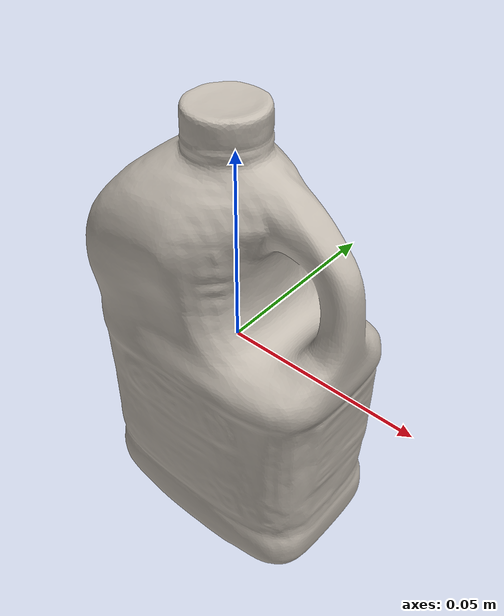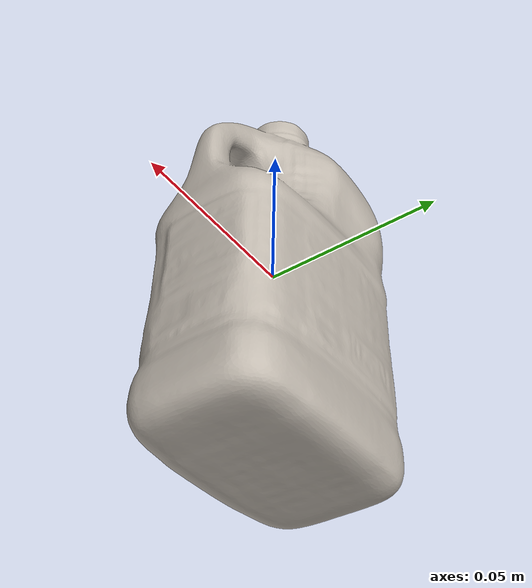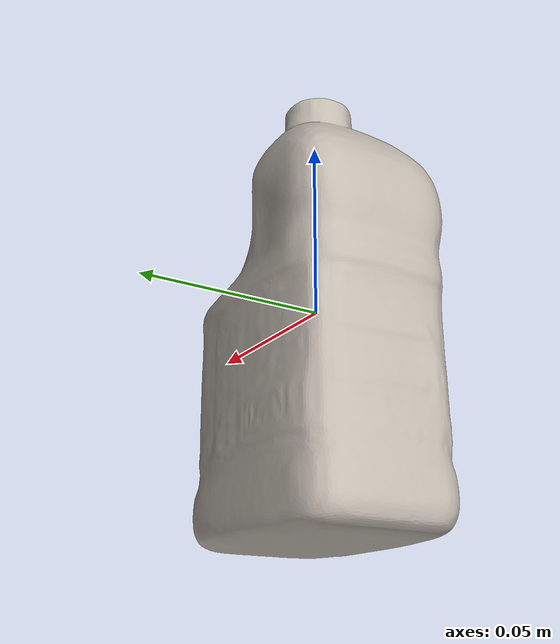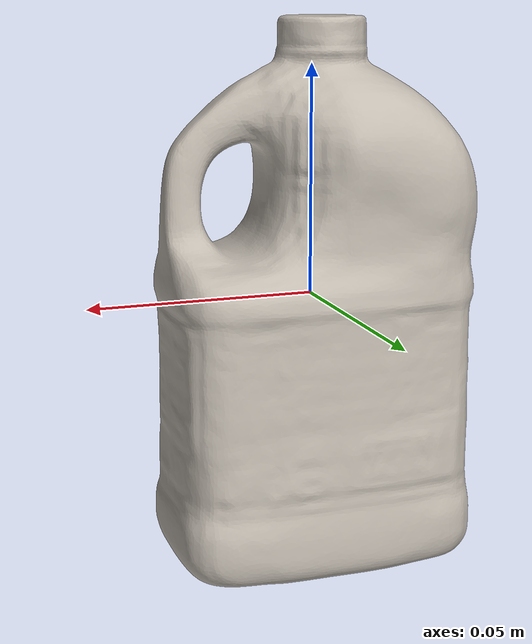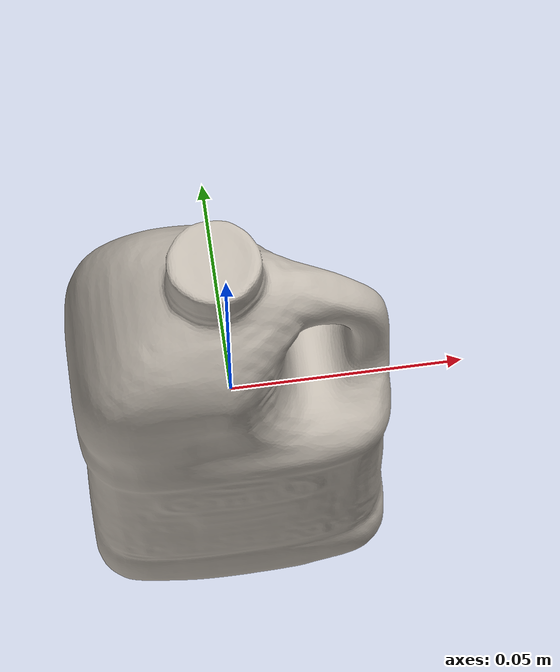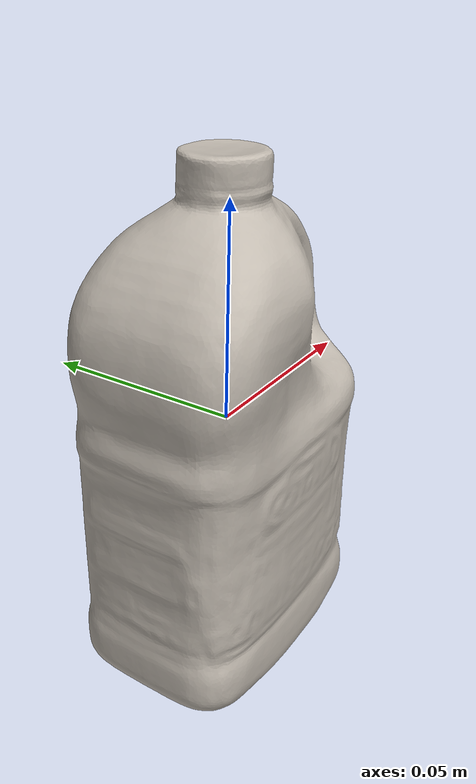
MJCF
<?xml version='1.0' encoding='utf-8'?>
<mujoco model="canola_oil_2">
  <asset>
    <texture file="ceramic.png" name="tex-canola_oil_2" type="2d" />
    <material name="canola_oil_2" reflectance="0.5" texrepeat="1 1" texture="tex-canola_oil_2" texuniform="false" />
    <mesh file="visual/model_normalized_0.obj" name="model_normalized_0_vis" scale="0.12000000000000002 0.12000000000000002 0.12000000000000002" refquat="0.7071067811865475 0.0 0.0 0.7071067811865475" />
    <mesh file="collision/model_normalized_collision_13.obj" name="model_normalized_collision_13._coll" scale="0.12000000000000002 0.12000000000000002 0.12000000000000002" refquat="0.7071067811865475 0.0 0.0 0.7071067811865475" />
    <mesh file="collision/model_normalized_collision_15.obj" name="model_normalized_collision_15._coll" scale="0.12000000000000002 0.12000000000000002 0.12000000000000002" refquat="0.7071067811865475 0.0 0.0 0.7071067811865475" />
    <mesh file="collision/model_normalized_collision_10.obj" name="model_normalized_collision_10._coll" scale="0.12000000000000002 0.12000000000000002 0.12000000000000002" refquat="0.7071067811865475 0.0 0.0 0.7071067811865475" />
    <mesh file="collision/model_normalized_collision_26.obj" name="model_normalized_collision_26._coll" scale="0.12000000000000002 0.12000000000000002 0.12000000000000002" refquat="0.7071067811865475 0.0 0.0 0.7071067811865475" />
    <mesh file="collision/model_normalized_collision_25.obj" name="model_normalized_collision_25._coll" scale="0.12000000000000002 0.12000000000000002 0.12000000000000002" refquat="0.7071067811865475 0.0 0.0 0.7071067811865475" />
    <mesh file="collision/model_normalized_collision_5.obj" name="model_normalized_collision_5._coll" scale="0.12000000000000002 0.12000000000000002 0.12000000000000002" refquat="0.7071067811865475 0.0 0.0 0.7071067811865475" />
    <mesh file="collision/model_normalized_collision_31.obj" name="model_normalized_collision_31._coll" scale="0.12000000000000002 0.12000000000000002 0.12000000000000002" refquat="0.7071067811865475 0.0 0.0 0.7071067811865475" />
    <mesh file="collision/model_normalized_collision_3.obj" name="model_normalized_collision_3._coll" scale="0.12000000000000002 0.12000000000000002 0.12000000000000002" refquat="0.7071067811865475 0.0 0.0 0.7071067811865475" />
    <mesh file="collision/model_normalized_collision_14.obj" name="model_normalized_collision_14._coll" scale="0.12000000000000002 0.12000000000000002 0.12000000000000002" refquat="0.7071067811865475 0.0 0.0 0.7071067811865475" />
    <mesh file="collision/model_normalized_collision_28.obj" name="model_normalized_collision_28._coll" scale="0.12000000000000002 0.12000000000000002 0.12000000000000002" refquat="0.7071067811865475 0.0 0.0 0.7071067811865475" />
    <mesh file="collision/model_normalized_collision_11.obj" name="model_normalized_collision_11._coll" scale="0.12000000000000002 0.12000000000000002 0.12000000000000002" refquat="0.7071067811865475 0.0 0.0 0.7071067811865475" />
    <mesh file="collision/model_normalized_collision_29.obj" name="model_normalized_collision_29._coll" scale="0.12000000000000002 0.12000000000000002 0.12000000000000002" refquat="0.7071067811865475 0.0 0.0 0.7071067811865475" />
    <mesh file="collision/model_normalized_collision_24.obj" name="model_normalized_collision_24._coll" scale="0.12000000000000002 0.12000000000000002 0.12000000000000002" refquat="0.7071067811865475 0.0 0.0 0.7071067811865475" />
    <mesh file="collision/model_normalized_collision_1.obj" name="model_normalized_collision_1._coll" scale="0.12000000000000002 0.12000000000000002 0.12000000000000002" refquat="0.7071067811865475 0.0 0.0 0.7071067811865475" />
    <mesh file="collision/model_normalized_collision_0.obj" name="model_normalized_collision_0._coll" scale="0.12000000000000002 0.12000000000000002 0.12000000000000002" refquat="0.7071067811865475 0.0 0.0 0.7071067811865475" />
    <mesh file="collision/model_normalized_collision_27.obj" name="model_normalized_collision_27._coll" scale="0.12000000000000002 0.12000000000000002 0.12000000000000002" refquat="0.7071067811865475 0.0 0.0 0.7071067811865475" />
    <mesh file="collision/model_normalized_collision_9.obj" name="model_normalized_collision_9._coll" scale="0.12000000000000002 0.12000000000000002 0.12000000000000002" refquat="0.7071067811865475 0.0 0.0 0.7071067811865475" />
    <mesh file="collision/model_normalized_collision_19.obj" name="model_normalized_collision_19._coll" scale="0.12000000000000002 0.12000000000000002 0.12000000000000002" refquat="0.7071067811865475 0.0 0.0 0.7071067811865475" />
    <mesh file="collision/model_normalized_collision_21.obj" name="model_normalized_collision_21._coll" scale="0.12000000000000002 0.12000000000000002 0.12000000000000002" refquat="0.7071067811865475 0.0 0.0 0.7071067811865475" />
    <mesh file="collision/model_normalized_collision_30.obj" name="model_normalized_collision_30._coll" scale="0.12000000000000002 0.12000000000000002 0.12000000000000002" refquat="0.7071067811865475 0.0 0.0 0.7071067811865475" />
    <mesh file="collision/model_normalized_collision_20.obj" name="model_normalized_collision_20._coll" scale="0.12000000000000002 0.12000000000000002 0.12000000000000002" refquat="0.7071067811865475 0.0 0.0 0.7071067811865475" />
    <mesh file="collision/model_normalized_collision_2.obj" name="model_normalized_collision_2._coll" scale="0.12000000000000002 0.12000000000000002 0.12000000000000002" refquat="0.7071067811865475 0.0 0.0 0.7071067811865475" />
    <mesh file="collision/model_normalized_collision_7.obj" name="model_normalized_collision_7._coll" scale="0.12000000000000002 0.12000000000000002 0.12000000000000002" refquat="0.7071067811865475 0.0 0.0 0.7071067811865475" />
    <mesh file="collision/model_normalized_collision_22.obj" name="model_normalized_collision_22._coll" scale="0.12000000000000002 0.12000000000000002 0.12000000000000002" refquat="0.7071067811865475 0.0 0.0 0.7071067811865475" />
    <mesh file="collision/model_normalized_collision_16.obj" name="model_normalized_collision_16._coll" scale="0.12000000000000002 0.12000000000000002 0.12000000000000002" refquat="0.7071067811865475 0.0 0.0 0.7071067811865475" />
    <mesh file="collision/model_normalized_collision_8.obj" name="model_normalized_collision_8._coll" scale="0.12000000000000002 0.12000000000000002 0.12000000000000002" refquat="0.7071067811865475 0.0 0.0 0.7071067811865475" />
    <mesh file="collision/model_normalized_collision_6.obj" name="model_normalized_collision_6._coll" scale="0.12000000000000002 0.12000000000000002 0.12000000000000002" refquat="0.7071067811865475 0.0 0.0 0.7071067811865475" />
    <mesh file="collision/model_normalized_collision_18.obj" name="model_normalized_collision_18._coll" scale="0.12000000000000002 0.12000000000000002 0.12000000000000002" refquat="0.7071067811865475 0.0 0.0 0.7071067811865475" />
    <mesh file="collision/model_normalized_collision_17.obj" name="model_normalized_collision_17._coll" scale="0.12000000000000002 0.12000000000000002 0.12000000000000002" refquat="0.7071067811865475 0.0 0.0 0.7071067811865475" />
    <mesh file="collision/model_normalized_collision_12.obj" name="model_normalized_collision_12._coll" scale="0.12000000000000002 0.12000000000000002 0.12000000000000002" refquat="0.7071067811865475 0.0 0.0 0.7071067811865475" />
    <mesh file="collision/model_normalized_collision_4.obj" name="model_normalized_collision_4._coll" scale="0.12000000000000002 0.12000000000000002 0.12000000000000002" refquat="0.7071067811865475 0.0 0.0 0.7071067811865475" />
    <mesh file="collision/model_normalized_collision_23.obj" name="model_normalized_collision_23._coll" scale="0.12000000000000002 0.12000000000000002 0.12000000000000002" refquat="0.7071067811865475 0.0 0.0 0.7071067811865475" />
    <texture type="2d" name="c3245da3f00d_Canola_oil__3d_asse_texture_kd" file="visual/c3245da3f00d_Canola_oil__3d_asse_texture_kd.png" />
    <material name="Material_0" texture="c3245da3f00d_Canola_oil__3d_asse_texture_kd" specular="0.5" shininess="0.5" />
  </asset>
  <default>
    <default class="region">
      <geom group="1" conaffinity="0" contype="0" rgba="0 1 0 0" />
    </default>
  </default>
  <worldbody>
    <body>
      <body name="object">
        <geom solimp="0.998 0.998 0.001" solref="0.001 1" density="100" friction="0.95 0.3 0.1" type="mesh" mesh="model_normalized_0_vis" conaffinity="0" contype="0" group="1" material="Material_0" />
        <geom solimp="0.998 0.998 0.001" solref="0.001 1" density="100" friction="0.95 0.3 0.1" type="mesh" mesh="model_normalized_collision_13._coll" group="0" rgba="0.8 0.8 0.8 0.0" />
        <geom solimp="0.998 0.998 0.001" solref="0.001 1" density="100" friction="0.95 0.3 0.1" type="mesh" mesh="model_normalized_collision_15._coll" group="0" rgba="0.8 0.8 0.8 0.0" />
        <geom solimp="0.998 0.998 0.001" solref="0.001 1" density="100" friction="0.95 0.3 0.1" type="mesh" mesh="model_normalized_collision_10._coll" group="0" rgba="0.8 0.8 0.8 0.0" />
        <geom solimp="0.998 0.998 0.001" solref="0.001 1" density="100" friction="0.95 0.3 0.1" type="mesh" mesh="model_normalized_collision_26._coll" group="0" rgba="0.8 0.8 0.8 0.0" />
        <geom solimp="0.998 0.998 0.001" solref="0.001 1" density="100" friction="0.95 0.3 0.1" type="mesh" mesh="model_normalized_collision_25._coll" group="0" rgba="0.8 0.8 0.8 0.0" />
        <geom solimp="0.998 0.998 0.001" solref="0.001 1" density="100" friction="0.95 0.3 0.1" type="mesh" mesh="model_normalized_collision_5._coll" group="0" rgba="0.8 0.8 0.8 0.0" />
        <geom solimp="0.998 0.998 0.001" solref="0.001 1" density="100" friction="0.95 0.3 0.1" type="mesh" mesh="model_normalized_collision_31._coll" group="0" rgba="0.8 0.8 0.8 0.0" />
        <geom solimp="0.998 0.998 0.001" solref="0.001 1" density="100" friction="0.95 0.3 0.1" type="mesh" mesh="model_normalized_collision_3._coll" group="0" rgba="0.8 0.8 0.8 0.0" />
        <geom solimp="0.998 0.998 0.001" solref="0.001 1" density="100" friction="0.95 0.3 0.1" type="mesh" mesh="model_normalized_collision_14._coll" group="0" rgba="0.8 0.8 0.8 0.0" />
        <geom solimp="0.998 0.998 0.001" solref="0.001 1" density="100" friction="0.95 0.3 0.1" type="mesh" mesh="model_normalized_collision_28._coll" group="0" rgba="0.8 0.8 0.8 0.0" />
        <geom solimp="0.998 0.998 0.001" solref="0.001 1" density="100" friction="0.95 0.3 0.1" type="mesh" mesh="model_normalized_collision_11._coll" group="0" rgba="0.8 0.8 0.8 0.0" />
        <geom solimp="0.998 0.998 0.001" solref="0.001 1" density="100" friction="0.95 0.3 0.1" type="mesh" mesh="model_normalized_collision_29._coll" group="0" rgba="0.8 0.8 0.8 0.0" />
        <geom solimp="0.998 0.998 0.001" solref="0.001 1" density="100" friction="0.95 0.3 0.1" type="mesh" mesh="model_normalized_collision_24._coll" group="0" rgba="0.8 0.8 0.8 0.0" />
        <geom solimp="0.998 0.998 0.001" solref="0.001 1" density="100" friction="0.95 0.3 0.1" type="mesh" mesh="model_normalized_collision_1._coll" group="0" rgba="0.8 0.8 0.8 0.0" />
        <geom solimp="0.998 0.998 0.001" solref="0.001 1" density="100" friction="0.95 0.3 0.1" type="mesh" mesh="model_normalized_collision_0._coll" group="0" rgba="0.8 0.8 0.8 0.0" />
        <geom solimp="0.998 0.998 0.001" solref="0.001 1" density="100" friction="0.95 0.3 0.1" type="mesh" mesh="model_normalized_collision_27._coll" group="0" rgba="0.8 0.8 0.8 0.0" />
        <geom solimp="0.998 0.998 0.001" solref="0.001 1" density="100" friction="0.95 0.3 0.1" type="mesh" mesh="model_normalized_collision_9._coll" group="0" rgba="0.8 0.8 0.8 0.0" />
        <geom solimp="0.998 0.998 0.001" solref="0.001 1" density="100" friction="0.95 0.3 0.1" type="mesh" mesh="model_normalized_collision_19._coll" group="0" rgba="0.8 0.8 0.8 0.0" />
        <geom solimp="0.998 0.998 0.001" solref="0.001 1" density="100" friction="0.95 0.3 0.1" type="mesh" mesh="model_normalized_collision_21._coll" group="0" rgba="0.8 0.8 0.8 0.0" />
        <geom solimp="0.998 0.998 0.001" solref="0.001 1" density="100" friction="0.95 0.3 0.1" type="mesh" mesh="model_normalized_collision_30._coll" group="0" rgba="0.8 0.8 0.8 0.0" />
        <geom solimp="0.998 0.998 0.001" solref="0.001 1" density="100" friction="0.95 0.3 0.1" type="mesh" mesh="model_normalized_collision_20._coll" group="0" rgba="0.8 0.8 0.8 0.0" />
        <geom solimp="0.998 0.998 0.001" solref="0.001 1" density="100" friction="0.95 0.3 0.1" type="mesh" mesh="model_normalized_collision_2._coll" group="0" rgba="0.8 0.8 0.8 0.0" />
        <geom solimp="0.998 0.998 0.001" solref="0.001 1" density="100" friction="0.95 0.3 0.1" type="mesh" mesh="model_normalized_collision_7._coll" group="0" rgba="0.8 0.8 0.8 0.0" />
        <geom solimp="0.998 0.998 0.001" solref="0.001 1" density="100" friction="0.95 0.3 0.1" type="mesh" mesh="model_normalized_collision_22._coll" group="0" rgba="0.8 0.8 0.8 0.0" />
        <geom solimp="0.998 0.998 0.001" solref="0.001 1" density="100" friction="0.95 0.3 0.1" type="mesh" mesh="model_normalized_collision_16._coll" group="0" rgba="0.8 0.8 0.8 0.0" />
        <geom solimp="0.998 0.998 0.001" solref="0.001 1" density="100" friction="0.95 0.3 0.1" type="mesh" mesh="model_normalized_collision_8._coll" group="0" rgba="0.8 0.8 0.8 0.0" />
        <geom solimp="0.998 0.998 0.001" solref="0.001 1" density="100" friction="0.95 0.3 0.1" type="mesh" mesh="model_normalized_collision_6._coll" group="0" rgba="0.8 0.8 0.8 0.0" />
        <geom solimp="0.998 0.998 0.001" solref="0.001 1" density="100" friction="0.95 0.3 0.1" type="mesh" mesh="model_normalized_collision_18._coll" group="0" rgba="0.8 0.8 0.8 0.0" />
        <geom solimp="0.998 0.998 0.001" solref="0.001 1" density="100" friction="0.95 0.3 0.1" type="mesh" mesh="model_normalized_collision_17._coll" group="0" rgba="0.8 0.8 0.8 0.0" />
        <geom solimp="0.998 0.998 0.001" solref="0.001 1" density="100" friction="0.95 0.3 0.1" type="mesh" mesh="model_normalized_collision_12._coll" group="0" rgba="0.8 0.8 0.8 0.0" />
        <geom solimp="0.998 0.998 0.001" solref="0.001 1" density="100" friction="0.95 0.3 0.1" type="mesh" mesh="model_normalized_collision_4._coll" group="0" rgba="0.8 0.8 0.8 0.0" />
        <geom solimp="0.998 0.998 0.001" solref="0.001 1" density="100" friction="0.95 0.3 0.1" type="mesh" mesh="model_normalized_collision_23._coll" group="0" rgba="0.8 0.8 0.8 0.0" />
        <geom class="region" name="reg_bbox" type="box" pos="0.00012299880000000044 -7.205280000000093e-05 -1.1999999952050366e-09" size="0.03466845240000001 0.023564310000000005 0.06090908880000002" />
      </body>
    <site rgba="0 0 0 0" size="0.005" pos="0 0 -0.06090909" name="bottom_site" /><site rgba="0 0 0 0" size="0.005" pos="0 0 0.060909088" name="top_site" /><site rgba="0 0 0 0" size="0.005" pos="0.034791451 0.034791451 0" name="horizontal_radius_site" /></body>
  </worldbody>
</mujoco>
